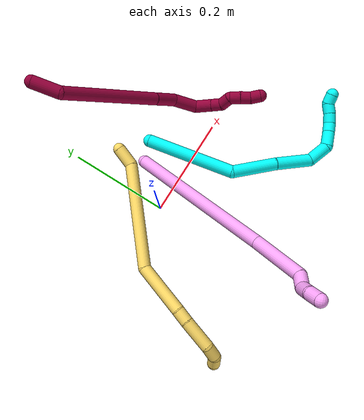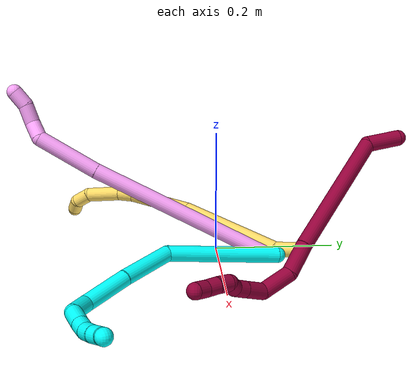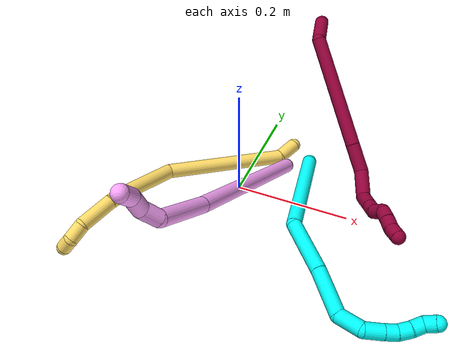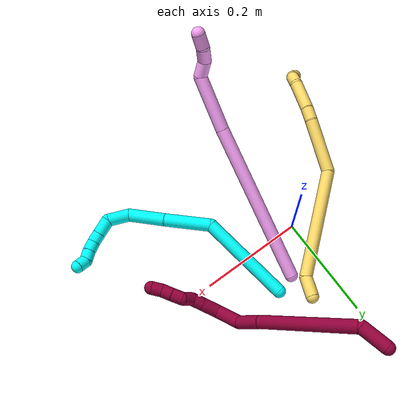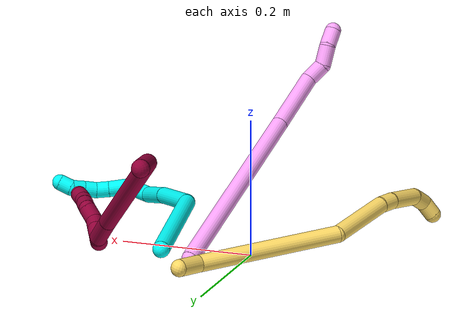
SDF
<sdf version="1.7">
 <world name="default">
  <model name="bin">
   <static>1</static>
   <link name="bottom">
    <collision name="collision-bottom">
     <pose>0 0 -0.01 0 -0 0</pose>
     <geometry><box><size>0.8 0.6 0.02</size></box></geometry>
     <surface>
      <friction><ode><mu>100</mu><mu2>100</mu2></ode></friction>
      <contact><collide_bitmask>65535</collide_bitmask></contact>
     </surface>
    </collision>
   </link>
   <link name="west_wall">
    <collision name="collision-west_wall">
     <pose>-0.41 0 0.1 0 -0 0</pose>
     <geometry><box><size>0.02 0.6 0.2</size></box></geometry>
     <surface>
      <friction><ode><mu>100</mu><mu2>100</mu2></ode></friction>
      <contact><collide_bitmask>65535</collide_bitmask></contact>
     </surface>
    </collision>
   </link>
   <link name="east_wall">
    <collision name="collision-east_wall">
     <pose>0.41 0 0.1 0 -0 0</pose>
     <geometry><box><size>0.02 0.6 0.2</size></box></geometry>
     <surface>
      <friction><ode><mu>100</mu><mu2>100</mu2></ode></friction>
      <contact><collide_bitmask>65535</collide_bitmask></contact>
     </surface>
    </collision>
   </link>
   <link name="south_wall">
    <collision name="collision-south_wall">
     <pose>0 -0.31 0.1 0 -0 0</pose>
     <geometry><box><size>0.8 0.02 0.2</size></box></geometry>
     <surface>
      <friction><ode><mu>100</mu><mu2>100</mu2></ode></friction>
      <contact><collide_bitmask>65535</collide_bitmask></contact>
     </surface>
    </collision>
   </link>
   <link name="north_wall">
    <collision name="collision-north_wall">
     <pose>0 0.31 0.1 0 -0 0</pose>
     <geometry><box><size>0.8 0.02 0.2</size></box></geometry>
     <surface>
      <friction><ode><mu>100</mu><mu2>100</mu2></ode></friction>
      <contact><collide_bitmask>65535</collide_bitmask></contact>
     </surface>
    </collision>
   </link>
  </model>
  <model name="3">
   <static>0</static>
   <link name="3">
    <collision name="collision-cylinder-e_1_1_4">
     <pose>-0.008405 -0.033027 0.082955 0.378891 -0.093858 -0.01801</pose>
     <geometry><cylinder><radius>0.0125</radius><length>0.179365</length></cylinder></geometry>
     <surface>
      <friction><ode><mu>1.16</mu><mu2>1.16</mu2><slip1>0</slip1><slip2>0</slip2></ode></friction>
      <contact><ode><kp>1e+06</kp><kd>1</kd><max_vel>0</max_vel><min_depth>0.001</min_depth></ode></contact>
     </surface>
    </collision>
    <visual name="visual-cylinder-e_1_1_4">
     <pose>-0.008405 -0.033027 0.082955 0.378891 -0.093858 -0.01801</pose>
     <geometry><cylinder><radius>0.0125</radius><length>0.179365</length></cylinder></geometry>
     <material><ambient>0.003922 1 0.996078 1</ambient></material>
    </visual>
    <collision name="collision-cylinder-e_2_4_5">
     <pose>-0.005443 -0.058285 0.209159 -0.177715 0.253142 -0.022673</pose>
     <geometry><cylinder><radius>0.0125</radius><length>0.090776</length></cylinder></geometry>
     <surface>
      <friction><ode><mu>1.16</mu><mu2>1.16</mu2><slip1>0</slip1><slip2>0</slip2></ode></friction>
      <contact><ode><kp>1e+06</kp><kd>1</kd><max_vel>0</max_vel><min_depth>0.001</min_depth></ode></contact>
     </surface>
    </collision>
    <visual name="visual-cylinder-e_2_4_5">
     <pose>-0.005443 -0.058285 0.209159 -0.177715 0.253142 -0.022673</pose>
     <geometry><cylinder><radius>0.0125</radius><length>0.090776</length></cylinder></geometry>
     <material><ambient>0.003922 1 0.996078 1</ambient></material>
    </visual>
    <collision name="collision-cylinder-e_3_5_6">
     <pose>0.018727 -0.046612 0.287706 -0.110202 0.346017 -0.019277</pose>
     <geometry><cylinder><radius>0.0125</radius><length>0.0755</length></cylinder></geometry>
     <surface>
      <friction><ode><mu>1.16</mu><mu2>1.16</mu2><slip1>0</slip1><slip2>0</slip2></ode></friction>
      <contact><ode><kp>1e+06</kp><kd>1</kd><max_vel>0</max_vel><min_depth>0.001</min_depth></ode></contact>
     </surface>
    </collision>
    <visual name="visual-cylinder-e_3_5_6">
     <pose>0.018727 -0.046612 0.287706 -0.110202 0.346017 -0.019277</pose>
     <geometry><cylinder><radius>0.0125</radius><length>0.0755</length></cylinder></geometry>
     <material><ambient>0.003922 1 0.996078 1</ambient></material>
    </visual>
    <collision name="collision-cylinder-e_4_6_7">
     <pose>0.032409 -0.029456 0.339735 -0.669791 0.041139 -0.014318</pose>
     <geometry><cylinder><radius>0.0125</radius><length>0.042723</length></cylinder></geometry>
     <surface>
      <friction><ode><mu>1.16</mu><mu2>1.16</mu2><slip1>0</slip1><slip2>0</slip2></ode></friction>
      <contact><ode><kp>1e+06</kp><kd>1</kd><max_vel>0</max_vel><min_depth>0.001</min_depth></ode></contact>
     </surface>
    </collision>
    <visual name="visual-cylinder-e_4_6_7">
     <pose>0.032409 -0.029456 0.339735 -0.669791 0.041139 -0.014318</pose>
     <geometry><cylinder><radius>0.0125</radius><length>0.042723</length></cylinder></geometry>
     <material><ambient>0.003922 1 0.996078 1</ambient></material>
    </visual>
    <collision name="collision-cylinder-e_5_7_8">
     <pose>0.038143 -0.001668 0.359189 -1.38569 0.317214 -0.264016</pose>
     <geometry><cylinder><radius>0.0125</radius><length>0.031132</length></cylinder></geometry>
     <surface>
      <friction><ode><mu>1.16</mu><mu2>1.16</mu2><slip1>0</slip1><slip2>0</slip2></ode></friction>
      <contact><ode><kp>1e+06</kp><kd>1</kd><max_vel>0</max_vel><min_depth>0.001</min_depth></ode></contact>
     </surface>
    </collision>
    <visual name="visual-cylinder-e_5_7_8">
     <pose>0.038143 -0.001668 0.359189 -1.38569 0.317214 -0.264016</pose>
     <geometry><cylinder><radius>0.0125</radius><length>0.031132</length></cylinder></geometry>
     <material><ambient>0.003922 1 0.996078 1</ambient></material>
    </visual>
    <collision name="collision-cylinder-e_6_8_9">
     <pose>0.045518 0.022497 0.363334 -1.42405 0.253309 -0.218918</pose>
     <geometry><cylinder><radius>0.0125</radius><length>0.020108</length></cylinder></geometry>
     <surface>
      <friction><ode><mu>1.16</mu><mu2>1.16</mu2><slip1>0</slip1><slip2>0</slip2></ode></friction>
      <contact><ode><kp>1e+06</kp><kd>1</kd><max_vel>0</max_vel><min_depth>0.001</min_depth></ode></contact>
     </surface>
    </collision>
    <visual name="visual-cylinder-e_6_8_9">
     <pose>0.045518 0.022497 0.363334 -1.42405 0.253309 -0.218918</pose>
     <geometry><cylinder><radius>0.0125</radius><length>0.020108</length></cylinder></geometry>
     <material><ambient>0.003922 1 0.996078 1</ambient></material>
    </visual>
    <collision name="collision-cylinder-e_7_9_10">
     <pose>0.048113 0.042248 0.364919 -1.55485 0.007499 -0.00738</pose>
     <geometry><cylinder><radius>0.0125</radius><length>0.020248</length></cylinder></geometry>
     <surface>
      <friction><ode><mu>1.16</mu><mu2>1.16</mu2><slip1>0</slip1><slip2>0</slip2></ode></friction>
      <contact><ode><kp>1e+06</kp><kd>1</kd><max_vel>0</max_vel><min_depth>0.001</min_depth></ode></contact>
     </surface>
    </collision>
    <visual name="visual-cylinder-e_7_9_10">
     <pose>0.048113 0.042248 0.364919 -1.55485 0.007499 -0.00738</pose>
     <geometry><cylinder><radius>0.0125</radius><length>0.020248</length></cylinder></geometry>
     <material><ambient>0.003922 1 0.996078 1</ambient></material>
    </visual>
    <collision name="collision-cylinder-e_8_10_11">
     <pose>0.048024 0.062316 0.363615 -1.71709 -0.016406 0.019</pose>
     <geometry><cylinder><radius>0.0125</radius><length>0.020108</length></cylinder></geometry>
     <surface>
      <friction><ode><mu>1.16</mu><mu2>1.16</mu2><slip1>0</slip1><slip2>0</slip2></ode></friction>
      <contact><ode><kp>1e+06</kp><kd>1</kd><max_vel>0</max_vel><min_depth>0.001</min_depth></ode></contact>
     </surface>
    </collision>
    <visual name="visual-cylinder-e_8_10_11">
     <pose>0.048024 0.062316 0.363615 -1.71709 -0.016406 0.019</pose>
     <geometry><cylinder><radius>0.0125</radius><length>0.020108</length></cylinder></geometry>
     <material><ambient>0.003922 1 0.996078 1</ambient></material>
    </visual>
    <collision name="collision-cylinder-e_9_11_2">
     <pose>0.045648 0.081193 0.366115 -1.15295 -0.222561 0.145041</pose>
     <geometry><cylinder><radius>0.0125</radius><length>0.020041</length></cylinder></geometry>
     <surface>
      <friction><ode><mu>1.16</mu><mu2>1.16</mu2><slip1>0</slip1><slip2>0</slip2></ode></friction>
      <contact><ode><kp>1e+06</kp><kd>1</kd><max_vel>0</max_vel><min_depth>0.001</min_depth></ode></contact>
     </surface>
    </collision>
    <visual name="visual-cylinder-e_9_11_2">
     <pose>0.045648 0.081193 0.366115 -1.15295 -0.222561 0.145041</pose>
     <geometry><cylinder><radius>0.0125</radius><length>0.020041</length></cylinder></geometry>
     <material><ambient>0.003922 1 0.996078 1</ambient></material>
    </visual>
    <collision name="collision-sphere-2">
     <pose>0.043436 0.090126 0.370081 0 -0 0</pose>
     <geometry><sphere><radius>0.0125</radius></sphere></geometry>
     <surface>
      <friction><ode><mu>1.16</mu><mu2>1.16</mu2><slip1>0</slip1><slip2>0</slip2></ode></friction>
      <contact><ode><kp>1e+06</kp><kd>1</kd><max_vel>0</max_vel><min_depth>0.001</min_depth></ode></contact>
     </surface>
    </collision>
    <visual name="visual-sphere-2">
     <pose>0.043436 0.090126 0.370081 0 -0 0</pose>
     <geometry><sphere><radius>0.0125</radius></sphere></geometry>
     <material><ambient>0.003922 1 0.996078 1</ambient></material>
    </visual>
    <collision name="collision-sphere-11">
     <pose>0.047859 0.072261 0.362149 0 -0 0</pose>
     <geometry><sphere><radius>0.0125</radius></sphere></geometry>
     <surface>
      <friction><ode><mu>1.16</mu><mu2>1.16</mu2><slip1>0</slip1><slip2>0</slip2></ode></friction>
      <contact><ode><kp>1e+06</kp><kd>1</kd><max_vel>0</max_vel><min_depth>0.001</min_depth></ode></contact>
     </surface>
    </collision>
    <visual name="visual-sphere-11">
     <pose>0.047859 0.072261 0.362149 0 -0 0</pose>
     <geometry><sphere><radius>0.0125</radius></sphere></geometry>
     <material><ambient>0.003922 1 0.996078 1</ambient></material>
    </visual>
    <collision name="collision-sphere-10">
     <pose>0.048189 0.052371 0.36508 0 -0 0</pose>
     <geometry><sphere><radius>0.0125</radius></sphere></geometry>
     <surface>
      <friction><ode><mu>1.16</mu><mu2>1.16</mu2><slip1>0</slip1><slip2>0</slip2></ode></friction>
      <contact><ode><kp>1e+06</kp><kd>1</kd><max_vel>0</max_vel><min_depth>0.001</min_depth></ode></contact>
     </surface>
    </collision>
    <visual name="visual-sphere-10">
     <pose>0.048189 0.052371 0.36508 0 -0 0</pose>
     <geometry><sphere><radius>0.0125</radius></sphere></geometry>
     <material><ambient>0.003922 1 0.996078 1</ambient></material>
    </visual>
    <collision name="collision-sphere-9">
     <pose>0.048037 0.032125 0.364757 0 -0 0</pose>
     <geometry><sphere><radius>0.0125</radius></sphere></geometry>
     <surface>
      <friction><ode><mu>1.16</mu><mu2>1.16</mu2><slip1>0</slip1><slip2>0</slip2></ode></friction>
      <contact><ode><kp>1e+06</kp><kd>1</kd><max_vel>0</max_vel><min_depth>0.001</min_depth></ode></contact>
     </surface>
    </collision>
    <visual name="visual-sphere-9">
     <pose>0.048037 0.032125 0.364757 0 -0 0</pose>
     <geometry><sphere><radius>0.0125</radius></sphere></geometry>
     <material><ambient>0.003922 1 0.996078 1</ambient></material>
    </visual>
    <collision name="collision-sphere-4">
     <pose>-0.01681 -0.066053 0.16591 0 -0 0</pose>
     <geometry><sphere><radius>0.0125</radius></sphere></geometry>
     <surface>
      <friction><ode><mu>1.16</mu><mu2>1.16</mu2><slip1>0</slip1><slip2>0</slip2></ode></friction>
      <contact><ode><kp>1e+06</kp><kd>1</kd><max_vel>0</max_vel><min_depth>0.001</min_depth></ode></contact>
     </surface>
    </collision>
    <visual name="visual-sphere-4">
     <pose>-0.01681 -0.066053 0.16591 0 -0 0</pose>
     <geometry><sphere><radius>0.0125</radius></sphere></geometry>
     <material><ambient>0.003922 1 0.996078 1</ambient></material>
    </visual>
    <collision name="collision-sphere-1">
     <geometry><sphere><radius>0.0125</radius></sphere></geometry>
     <surface>
      <friction><ode><mu>1.16</mu><mu2>1.16</mu2><slip1>0</slip1><slip2>0</slip2></ode></friction>
      <contact><ode><kp>1e+06</kp><kd>1</kd><max_vel>0</max_vel><min_depth>0.001</min_depth></ode></contact>
     </surface>
    </collision>
    <visual name="visual-sphere-1">
     <geometry><sphere><radius>0.0125</radius></sphere></geometry>
     <material><ambient>0.003922 1 0.996078 1</ambient></material>
    </visual>
    <collision name="collision-sphere-8">
     <pose>0.042998 0.012869 0.361911 0 -0 0</pose>
     <geometry><sphere><radius>0.0125</radius></sphere></geometry>
     <surface>
      <friction><ode><mu>1.16</mu><mu2>1.16</mu2><slip1>0</slip1><slip2>0</slip2></ode></friction>
      <contact><ode><kp>1e+06</kp><kd>1</kd><max_vel>0</max_vel><min_depth>0.001</min_depth></ode></contact>
     </surface>
    </collision>
    <visual name="visual-sphere-8">
     <pose>0.042998 0.012869 0.361911 0 -0 0</pose>
     <geometry><sphere><radius>0.0125</radius></sphere></geometry>
     <material><ambient>0.003922 1 0.996078 1</ambient></material>
    </visual>
    <collision name="collision-sphere-5">
     <pose>0.005924 -0.050517 0.252408 0 -0 0</pose>
     <geometry><sphere><radius>0.0125</radius></sphere></geometry>
     <surface>
      <friction><ode><mu>1.16</mu><mu2>1.16</mu2><slip1>0</slip1><slip2>0</slip2></ode></friction>
      <contact><ode><kp>1e+06</kp><kd>1</kd><max_vel>0</max_vel><min_depth>0.001</min_depth></ode></contact>
     </surface>
    </collision>
    <visual name="visual-sphere-5">
     <pose>0.005924 -0.050517 0.252408 0 -0 0</pose>
     <geometry><sphere><radius>0.0125</radius></sphere></geometry>
     <material><ambient>0.003922 1 0.996078 1</ambient></material>
    </visual>
    <collision name="collision-sphere-6">
     <pose>0.03153 -0.042706 0.323003 0 -0 0</pose>
     <geometry><sphere><radius>0.0125</radius></sphere></geometry>
     <surface>
      <friction><ode><mu>1.16</mu><mu2>1.16</mu2><slip1>0</slip1><slip2>0</slip2></ode></friction>
      <contact><ode><kp>1e+06</kp><kd>1</kd><max_vel>0</max_vel><min_depth>0.001</min_depth></ode></contact>
     </surface>
    </collision>
    <visual name="visual-sphere-6">
     <pose>0.03153 -0.042706 0.323003 0 -0 0</pose>
     <geometry><sphere><radius>0.0125</radius></sphere></geometry>
     <material><ambient>0.003922 1 0.996078 1</ambient></material>
    </visual>
    <collision name="collision-sphere-7">
     <pose>0.033287 -0.016205 0.356467 0 -0 0</pose>
     <geometry><sphere><radius>0.0125</radius></sphere></geometry>
     <surface>
      <friction><ode><mu>1.16</mu><mu2>1.16</mu2><slip1>0</slip1><slip2>0</slip2></ode></friction>
      <contact><ode><kp>1e+06</kp><kd>1</kd><max_vel>0</max_vel><min_depth>0.001</min_depth></ode></contact>
     </surface>
    </collision>
    <visual name="visual-sphere-7">
     <pose>0.033287 -0.016205 0.356467 0 -0 0</pose>
     <geometry><sphere><radius>0.0125</radius></sphere></geometry>
     <material><ambient>0.003922 1 0.996078 1</ambient></material>
    </visual>
    <inertial>
     <pose>0.011509 -0.023712 0.221256 0 -0 0</pose>
     <mass>0.5</mass>
     <inertia>
      <ixx>0.000595</ixx>
      <ixy>0</ixy>
      <ixz>0</ixz>
      <iyy>0.00056</iyy>
      <iyz>0</iyz>
      <izz>0.000194</izz>
     </inertia>
    </inertial>
   </link>
   <pose>0.102957 0.089627 0.024455 1.12674 1.38009 0.122555</pose>
  </model>
  <model name="4">
   <static>0</static>
   <link name="4">
    <collision name="collision-cylinder-e_1_1_4">
     <pose>-0.013681 -0.074809 0.133841 0.509679 -0.08899 -0.023197</pose>
     <geometry><cylinder><radius>0.0125</radius><length>0.307876</length></cylinder></geometry>
     <surface>
      <friction><ode><mu>1.16</mu><mu2>1.16</mu2><slip1>0</slip1><slip2>0</slip2></ode></friction>
      <contact><ode><kp>1e+06</kp><kd>1</kd><max_vel>0</max_vel><min_depth>0.001</min_depth></ode></contact>
     </surface>
    </collision>
    <visual name="visual-cylinder-e_1_1_4">
     <pose>-0.013681 -0.074809 0.133841 0.509679 -0.08899 -0.023197</pose>
     <geometry><cylinder><radius>0.0125</radius><length>0.307876</length></cylinder></geometry>
     <material><ambient>1 0.65098 0.996078 1</ambient></material>
    </visual>
    <collision name="collision-cylinder-e_2_4_5">
     <pose>-0.034555 -0.177008 0.311288 0.560847 -0.138789 -0.040032</pose>
     <geometry><cylinder><radius>0.0125</radius><length>0.103988</length></cylinder></geometry>
     <surface>
      <friction><ode><mu>1.16</mu><mu2>1.16</mu2><slip1>0</slip1><slip2>0</slip2></ode></friction>
      <contact><ode><kp>1e+06</kp><kd>1</kd><max_vel>0</max_vel><min_depth>0.001</min_depth></ode></contact>
     </surface>
    </collision>
    <visual name="visual-cylinder-e_2_4_5">
     <pose>-0.034555 -0.177008 0.311288 0.560847 -0.138789 -0.040032</pose>
     <geometry><cylinder><radius>0.0125</radius><length>0.103988</length></cylinder></geometry>
     <material><ambient>1 0.65098 0.996078 1</ambient></material>
    </visual>
    <collision name="collision-cylinder-e_3_5_6">
     <pose>-0.046474 -0.218095 0.359371 1.25483 -0.316919 -0.230733</pose>
     <geometry><cylinder><radius>0.0125</radius><length>0.030332</length></cylinder></geometry>
     <surface>
      <friction><ode><mu>1.16</mu><mu2>1.16</mu2><slip1>0</slip1><slip2>0</slip2></ode></friction>
      <contact><ode><kp>1e+06</kp><kd>1</kd><max_vel>0</max_vel><min_depth>0.001</min_depth></ode></contact>
     </surface>
    </collision>
    <visual name="visual-cylinder-e_3_5_6">
     <pose>-0.046474 -0.218095 0.359371 1.25483 -0.316919 -0.230733</pose>
     <geometry><cylinder><radius>0.0125</radius><length>0.030332</length></cylinder></geometry>
     <material><ambient>1 0.65098 0.996078 1</ambient></material>
    </visual>
    <collision name="collision-cylinder-e_4_6_7">
     <pose>-0.062109 -0.240329 0.370729 0.892491 -0.782851 -0.389904</pose>
     <geometry><cylinder><radius>0.0125</radius><length>0.030932</length></cylinder></geometry>
     <surface>
      <friction><ode><mu>1.16</mu><mu2>1.16</mu2><slip1>0</slip1><slip2>0</slip2></ode></friction>
      <contact><ode><kp>1e+06</kp><kd>1</kd><max_vel>0</max_vel><min_depth>0.001</min_depth></ode></contact>
     </surface>
    </collision>
    <visual name="visual-cylinder-e_4_6_7">
     <pose>-0.062109 -0.240329 0.370729 0.892491 -0.782851 -0.389904</pose>
     <geometry><cylinder><radius>0.0125</radius><length>0.030932</length></cylinder></geometry>
     <material><ambient>1 0.65098 0.996078 1</ambient></material>
    </visual>
    <collision name="collision-cylinder-e_5_7_2">
     <pose>-0.079396 -0.256109 0.386956 0.659196 -0.494692 -0.172332</pose>
     <geometry><cylinder><radius>0.0125</radius><length>0.026871</length></cylinder></geometry>
     <surface>
      <friction><ode><mu>1.16</mu><mu2>1.16</mu2><slip1>0</slip1><slip2>0</slip2></ode></friction>
      <contact><ode><kp>1e+06</kp><kd>1</kd><max_vel>0</max_vel><min_depth>0.001</min_depth></ode></contact>
     </surface>
    </collision>
    <visual name="visual-cylinder-e_5_7_2">
     <pose>-0.079396 -0.256109 0.386956 0.659196 -0.494692 -0.172332</pose>
     <geometry><cylinder><radius>0.0125</radius><length>0.026871</length></cylinder></geometry>
     <material><ambient>1 0.65098 0.996078 1</ambient></material>
    </visual>
    <collision name="collision-sphere-2">
     <pose>-0.085775 -0.263351 0.396303 0 -0 0</pose>
     <geometry><sphere><radius>0.0125</radius></sphere></geometry>
     <surface>
      <friction><ode><mu>1.16</mu><mu2>1.16</mu2><slip1>0</slip1><slip2>0</slip2></ode></friction>
      <contact><ode><kp>1e+06</kp><kd>1</kd><max_vel>0</max_vel><min_depth>0.001</min_depth></ode></contact>
     </surface>
    </collision>
    <visual name="visual-sphere-2">
     <pose>-0.085775 -0.263351 0.396303 0 -0 0</pose>
     <geometry><sphere><radius>0.0125</radius></sphere></geometry>
     <material><ambient>1 0.65098 0.996078 1</ambient></material>
    </visual>
    <collision name="collision-sphere-7">
     <pose>-0.073017 -0.248866 0.377608 0 -0 0</pose>
     <geometry><sphere><radius>0.0125</radius></sphere></geometry>
     <surface>
      <friction><ode><mu>1.16</mu><mu2>1.16</mu2><slip1>0</slip1><slip2>0</slip2></ode></friction>
      <contact><ode><kp>1e+06</kp><kd>1</kd><max_vel>0</max_vel><min_depth>0.001</min_depth></ode></contact>
     </surface>
    </collision>
    <visual name="visual-sphere-7">
     <pose>-0.073017 -0.248866 0.377608 0 -0 0</pose>
     <geometry><sphere><radius>0.0125</radius></sphere></geometry>
     <material><ambient>1 0.65098 0.996078 1</ambient></material>
    </visual>
    <collision name="collision-sphere-6">
     <pose>-0.051201 -0.231792 0.363849 0 -0 0</pose>
     <geometry><sphere><radius>0.0125</radius></sphere></geometry>
     <surface>
      <friction><ode><mu>1.16</mu><mu2>1.16</mu2><slip1>0</slip1><slip2>0</slip2></ode></friction>
      <contact><ode><kp>1e+06</kp><kd>1</kd><max_vel>0</max_vel><min_depth>0.001</min_depth></ode></contact>
     </surface>
    </collision>
    <visual name="visual-sphere-6">
     <pose>-0.051201 -0.231792 0.363849 0 -0 0</pose>
     <geometry><sphere><radius>0.0125</radius></sphere></geometry>
     <material><ambient>1 0.65098 0.996078 1</ambient></material>
    </visual>
    <collision name="collision-sphere-5">
     <pose>-0.041748 -0.204398 0.354893 0 -0 0</pose>
     <geometry><sphere><radius>0.0125</radius></sphere></geometry>
     <surface>
      <friction><ode><mu>1.16</mu><mu2>1.16</mu2><slip1>0</slip1><slip2>0</slip2></ode></friction>
      <contact><ode><kp>1e+06</kp><kd>1</kd><max_vel>0</max_vel><min_depth>0.001</min_depth></ode></contact>
     </surface>
    </collision>
    <visual name="visual-sphere-5">
     <pose>-0.041748 -0.204398 0.354893 0 -0 0</pose>
     <geometry><sphere><radius>0.0125</radius></sphere></geometry>
     <material><ambient>1 0.65098 0.996078 1</ambient></material>
    </visual>
    <collision name="collision-sphere-1">
     <geometry><sphere><radius>0.0125</radius></sphere></geometry>
     <surface>
      <friction><ode><mu>1.16</mu><mu2>1.16</mu2><slip1>0</slip1><slip2>0</slip2></ode></friction>
      <contact><ode><kp>1e+06</kp><kd>1</kd><max_vel>0</max_vel><min_depth>0.001</min_depth></ode></contact>
     </surface>
    </collision>
    <visual name="visual-sphere-1">
     <geometry><sphere><radius>0.0125</radius></sphere></geometry>
     <material><ambient>1 0.65098 0.996078 1</ambient></material>
    </visual>
    <collision name="collision-sphere-4">
     <pose>-0.027362 -0.149618 0.267682 0 -0 0</pose>
     <geometry><sphere><radius>0.0125</radius></sphere></geometry>
     <surface>
      <friction><ode><mu>1.16</mu><mu2>1.16</mu2><slip1>0</slip1><slip2>0</slip2></ode></friction>
      <contact><ode><kp>1e+06</kp><kd>1</kd><max_vel>0</max_vel><min_depth>0.001</min_depth></ode></contact>
     </surface>
    </collision>
    <visual name="visual-sphere-4">
     <pose>-0.027362 -0.149618 0.267682 0 -0 0</pose>
     <geometry><sphere><radius>0.0125</radius></sphere></geometry>
     <material><ambient>1 0.65098 0.996078 1</ambient></material>
    </visual>
    <inertial>
     <pose>-0.026539 -0.124739 0.212685 0 -0 0</pose>
     <mass>0.5</mass>
     <inertia>
      <ixx>0.002469</ixx>
      <ixy>0</ixy>
      <ixz>0</ixz>
      <iyy>0.002142</iyy>
      <iyz>0</iyz>
      <izz>0.001512</izz>
     </inertia>
    </inertial>
   </link>
   <pose>0.063412 0.077308 0.011495 -1.07364 1.12691 -2.34518</pose>
  </model>
  <model name="5">
   <static>0</static>
   <link name="5">
    <collision name="collision-cylinder-e_1_1_4">
     <pose>-0.011448 -0.01633 0.00375 1.34509 -0.599393 -0.482593</pose>
     <geometry><cylinder><radius>0.0125</radius><length>0.040585</length></cylinder></geometry>
     <surface>
      <friction><ode><mu>1.16</mu><mu2>1.16</mu2><slip1>0</slip1><slip2>0</slip2></ode></friction>
      <contact><ode><kp>1e+06</kp><kd>1</kd><max_vel>0</max_vel><min_depth>0.001</min_depth></ode></contact>
     </surface>
    </collision>
    <visual name="visual-cylinder-e_1_1_4">
     <pose>-0.011448 -0.01633 0.00375 1.34509 -0.599393 -0.482593</pose>
     <geometry><cylinder><radius>0.0125</radius><length>0.040585</length></cylinder></geometry>
     <material><ambient>1 0.858824 0.4 1</ambient></material>
    </visual>
    <collision name="collision-cylinder-e_2_4_5">
     <pose>-0.10929 -0.076002 0.05295 0.761659 -0.942216 -0.402353</pose>
     <geometry><cylinder><radius>0.0125</radius><length>0.213618</length></cylinder></geometry>
     <surface>
      <friction><ode><mu>1.16</mu><mu2>1.16</mu2><slip1>0</slip1><slip2>0</slip2></ode></friction>
      <contact><ode><kp>1e+06</kp><kd>1</kd><max_vel>0</max_vel><min_depth>0.001</min_depth></ode></contact>
     </surface>
    </collision>
    <visual name="visual-cylinder-e_2_4_5">
     <pose>-0.10929 -0.076002 0.05295 0.761659 -0.942216 -0.402353</pose>
     <geometry><cylinder><radius>0.0125</radius><length>0.213618</length></cylinder></geometry>
     <material><ambient>1 0.858824 0.4 1</ambient></material>
    </visual>
    <collision name="collision-cylinder-e_3_5_6">
     <pose>-0.21917 -0.161317 0.121125 1.07457 -0.457278 -0.275513</pose>
     <geometry><cylinder><radius>0.0125</radius><length>0.10639</length></cylinder></geometry>
     <surface>
      <friction><ode><mu>1.16</mu><mu2>1.16</mu2><slip1>0</slip1><slip2>0</slip2></ode></friction>
      <contact><ode><kp>1e+06</kp><kd>1</kd><max_vel>0</max_vel><min_depth>0.001</min_depth></ode></contact>
     </surface>
    </collision>
    <visual name="visual-cylinder-e_3_5_6">
     <pose>-0.21917 -0.161317 0.121125 1.07457 -0.457278 -0.275513</pose>
     <geometry><cylinder><radius>0.0125</radius><length>0.10639</length></cylinder></geometry>
     <material><ambient>1 0.858824 0.4 1</ambient></material>
    </visual>
    <collision name="collision-cylinder-e_4_6_7">
     <pose>-0.249646 -0.213996 0.147488 1.24314 -0.553668 -0.401549</pose>
     <geometry><cylinder><radius>0.0125</radius><length>0.026588</length></cylinder></geometry>
     <surface>
      <friction><ode><mu>1.16</mu><mu2>1.16</mu2><slip1>0</slip1><slip2>0</slip2></ode></friction>
      <contact><ode><kp>1e+06</kp><kd>1</kd><max_vel>0</max_vel><min_depth>0.001</min_depth></ode></contact>
     </surface>
    </collision>
    <visual name="visual-cylinder-e_4_6_7">
     <pose>-0.249646 -0.213996 0.147488 1.24314 -0.553668 -0.401549</pose>
     <geometry><cylinder><radius>0.0125</radius><length>0.026588</length></cylinder></geometry>
     <material><ambient>1 0.858824 0.4 1</ambient></material>
    </visual>
    <collision name="collision-cylinder-e_5_7_8">
     <pose>-0.272879 -0.24992 0.155435 1.40161 -0.5657 -0.48092</pose>
     <geometry><cylinder><radius>0.0125</radius><length>0.060608</length></cylinder></geometry>
     <surface>
      <friction><ode><mu>1.16</mu><mu2>1.16</mu2><slip1>0</slip1><slip2>0</slip2></ode></friction>
      <contact><ode><kp>1e+06</kp><kd>1</kd><max_vel>0</max_vel><min_depth>0.001</min_depth></ode></contact>
     </surface>
    </collision>
    <visual name="visual-cylinder-e_5_7_8">
     <pose>-0.272879 -0.24992 0.155435 1.40161 -0.5657 -0.48092</pose>
     <geometry><cylinder><radius>0.0125</radius><length>0.060608</length></cylinder></geometry>
     <material><ambient>1 0.858824 0.4 1</ambient></material>
    </visual>
    <collision name="collision-cylinder-e_6_8_9">
     <pose>-0.298488 -0.285482 0.155928 1.92417 -0.704182 -0.970209</pose>
     <geometry><cylinder><radius>0.0125</radius><length>0.028932</length></cylinder></geometry>
     <surface>
      <friction><ode><mu>1.16</mu><mu2>1.16</mu2><slip1>0</slip1><slip2>0</slip2></ode></friction>
      <contact><ode><kp>1e+06</kp><kd>1</kd><max_vel>0</max_vel><min_depth>0.001</min_depth></ode></contact>
     </surface>
    </collision>
    <visual name="visual-cylinder-e_6_8_9">
     <pose>-0.298488 -0.285482 0.155928 1.92417 -0.704182 -0.970209</pose>
     <geometry><cylinder><radius>0.0125</radius><length>0.028932</length></cylinder></geometry>
     <material><ambient>1 0.858824 0.4 1</ambient></material>
    </visual>
    <collision name="collision-cylinder-e_7_9_2">
     <pose>-0.317374 -0.297963 0.145767 2.81669 -0.95785 -2.53011</pose>
     <geometry><cylinder><radius>0.0125</radius><length>0.023279</length></cylinder></geometry>
     <surface>
      <friction><ode><mu>1.16</mu><mu2>1.16</mu2><slip1>0</slip1><slip2>0</slip2></ode></friction>
      <contact><ode><kp>1e+06</kp><kd>1</kd><max_vel>0</max_vel><min_depth>0.001</min_depth></ode></contact>
     </surface>
    </collision>
    <visual name="visual-cylinder-e_7_9_2">
     <pose>-0.317374 -0.297963 0.145767 2.81669 -0.95785 -2.53011</pose>
     <geometry><cylinder><radius>0.0125</radius><length>0.023279</length></cylinder></geometry>
     <material><ambient>1 0.858824 0.4 1</ambient></material>
    </visual>
    <collision name="collision-sphere-2">
     <pose>-0.326894 -0.3001 0.139421 0 -0 0</pose>
     <geometry><sphere><radius>0.0125</radius></sphere></geometry>
     <surface>
      <friction><ode><mu>1.16</mu><mu2>1.16</mu2><slip1>0</slip1><slip2>0</slip2></ode></friction>
      <contact><ode><kp>1e+06</kp><kd>1</kd><max_vel>0</max_vel><min_depth>0.001</min_depth></ode></contact>
     </surface>
    </collision>
    <visual name="visual-sphere-2">
     <pose>-0.326894 -0.3001 0.139421 0 -0 0</pose>
     <geometry><sphere><radius>0.0125</radius></sphere></geometry>
     <material><ambient>1 0.858824 0.4 1</ambient></material>
    </visual>
    <collision name="collision-sphere-9">
     <pose>-0.307853 -0.295826 0.152112 0 -0 0</pose>
     <geometry><sphere><radius>0.0125</radius></sphere></geometry>
     <surface>
      <friction><ode><mu>1.16</mu><mu2>1.16</mu2><slip1>0</slip1><slip2>0</slip2></ode></friction>
      <contact><ode><kp>1e+06</kp><kd>1</kd><max_vel>0</max_vel><min_depth>0.001</min_depth></ode></contact>
     </surface>
    </collision>
    <visual name="visual-sphere-9">
     <pose>-0.307853 -0.295826 0.152112 0 -0 0</pose>
     <geometry><sphere><radius>0.0125</radius></sphere></geometry>
     <material><ambient>1 0.858824 0.4 1</ambient></material>
    </visual>
    <collision name="collision-sphere-4">
     <pose>-0.022896 -0.03266 0.0075 0 -0 0</pose>
     <geometry><sphere><radius>0.0125</radius></sphere></geometry>
     <surface>
      <friction><ode><mu>1.16</mu><mu2>1.16</mu2><slip1>0</slip1><slip2>0</slip2></ode></friction>
      <contact><ode><kp>1e+06</kp><kd>1</kd><max_vel>0</max_vel><min_depth>0.001</min_depth></ode></contact>
     </surface>
    </collision>
    <visual name="visual-sphere-4">
     <pose>-0.022896 -0.03266 0.0075 0 -0 0</pose>
     <geometry><sphere><radius>0.0125</radius></sphere></geometry>
     <material><ambient>1 0.858824 0.4 1</ambient></material>
    </visual>
    <collision name="collision-sphere-1">
     <geometry><sphere><radius>0.0125</radius></sphere></geometry>
     <surface>
      <friction><ode><mu>1.16</mu><mu2>1.16</mu2><slip1>0</slip1><slip2>0</slip2></ode></friction>
      <contact><ode><kp>1e+06</kp><kd>1</kd><max_vel>0</max_vel><min_depth>0.001</min_depth></ode></contact>
     </surface>
    </collision>
    <visual name="visual-sphere-1">
     <geometry><sphere><radius>0.0125</radius></sphere></geometry>
     <material><ambient>1 0.858824 0.4 1</ambient></material>
    </visual>
    <collision name="collision-sphere-8">
     <pose>-0.289122 -0.275138 0.159743 0 -0 0</pose>
     <geometry><sphere><radius>0.0125</radius></sphere></geometry>
     <surface>
      <friction><ode><mu>1.16</mu><mu2>1.16</mu2><slip1>0</slip1><slip2>0</slip2></ode></friction>
      <contact><ode><kp>1e+06</kp><kd>1</kd><max_vel>0</max_vel><min_depth>0.001</min_depth></ode></contact>
     </surface>
    </collision>
    <visual name="visual-sphere-8">
     <pose>-0.289122 -0.275138 0.159743 0 -0 0</pose>
     <geometry><sphere><radius>0.0125</radius></sphere></geometry>
     <material><ambient>1 0.858824 0.4 1</ambient></material>
    </visual>
    <collision name="collision-sphere-5">
     <pose>-0.195684 -0.119345 0.0984 0 -0 0</pose>
     <geometry><sphere><radius>0.0125</radius></sphere></geometry>
     <surface>
      <friction><ode><mu>1.16</mu><mu2>1.16</mu2><slip1>0</slip1><slip2>0</slip2></ode></friction>
      <contact><ode><kp>1e+06</kp><kd>1</kd><max_vel>0</max_vel><min_depth>0.001</min_depth></ode></contact>
     </surface>
    </collision>
    <visual name="visual-sphere-5">
     <pose>-0.195684 -0.119345 0.0984 0 -0 0</pose>
     <geometry><sphere><radius>0.0125</radius></sphere></geometry>
     <material><ambient>1 0.858824 0.4 1</ambient></material>
    </visual>
    <collision name="collision-sphere-6">
     <pose>-0.242656 -0.20329 0.143849 0 -0 0</pose>
     <geometry><sphere><radius>0.0125</radius></sphere></geometry>
     <surface>
      <friction><ode><mu>1.16</mu><mu2>1.16</mu2><slip1>0</slip1><slip2>0</slip2></ode></friction>
      <contact><ode><kp>1e+06</kp><kd>1</kd><max_vel>0</max_vel><min_depth>0.001</min_depth></ode></contact>
     </surface>
    </collision>
    <visual name="visual-sphere-6">
     <pose>-0.242656 -0.20329 0.143849 0 -0 0</pose>
     <geometry><sphere><radius>0.0125</radius></sphere></geometry>
     <material><ambient>1 0.858824 0.4 1</ambient></material>
    </visual>
    <collision name="collision-sphere-7">
     <pose>-0.256636 -0.224702 0.151128 0 -0 0</pose>
     <geometry><sphere><radius>0.0125</radius></sphere></geometry>
     <surface>
      <friction><ode><mu>1.16</mu><mu2>1.16</mu2><slip1>0</slip1><slip2>0</slip2></ode></friction>
      <contact><ode><kp>1e+06</kp><kd>1</kd><max_vel>0</max_vel><min_depth>0.001</min_depth></ode></contact>
     </surface>
    </collision>
    <visual name="visual-sphere-7">
     <pose>-0.256636 -0.224702 0.151128 0 -0 0</pose>
     <geometry><sphere><radius>0.0125</radius></sphere></geometry>
     <material><ambient>1 0.858824 0.4 1</ambient></material>
    </visual>
    <inertial>
     <pose>-0.172657 -0.140187 0.091193 0 -0 0</pose>
     <mass>0.5</mass>
     <inertia>
      <ixx>0.000303</ixx>
      <ixy>0</ixy>
      <ixz>0</ixz>
      <iyy>0.000548</iyy>
      <iyz>0</iyz>
      <izz>0.001184</izz>
     </inertia>
    </inertial>
   </link>
   <pose>0.057233 0.134141 0.01476 0.090188 -0.336143 0.246655</pose>
  </model>
  <model name="8">
   <static>0</static>
   <link name="8">
    <collision name="collision-cylinder-e_1_1_4">
     <pose>0.004708 -0.009942 -0.024561 2.75696 0.175827 0.850109</pose>
     <geometry><cylinder><radius>0.0125</radius><length>0.053825</length></cylinder></geometry>
     <surface>
      <friction><ode><mu>1.16</mu><mu2>1.16</mu2><slip1>0</slip1><slip2>0</slip2></ode></friction>
      <contact><ode><kp>1e+06</kp><kd>1</kd><max_vel>0</max_vel><min_depth>0.001</min_depth></ode></contact>
     </surface>
    </collision>
    <visual name="visual-cylinder-e_1_1_4">
     <pose>0.004708 -0.009942 -0.024561 2.75696 0.175827 0.850109</pose>
     <geometry><cylinder><radius>0.0125</radius><length>0.053825</length></cylinder></geometry>
     <material><ambient>0.584314 0 0.227451 1</ambient></material>
    </visual>
    <collision name="collision-cylinder-e_2_4_5">
     <pose>0.08294 -0.072813 -0.097919 2.3156 0.795952 1.52936</pose>
     <geometry><cylinder><radius>0.0125</radius><length>0.205799</length></cylinder></geometry>
     <surface>
      <friction><ode><mu>1.16</mu><mu2>1.16</mu2><slip1>0</slip1><slip2>0</slip2></ode></friction>
      <contact><ode><kp>1e+06</kp><kd>1</kd><max_vel>0</max_vel><min_depth>0.001</min_depth></ode></contact>
     </surface>
    </collision>
    <visual name="visual-cylinder-e_2_4_5">
     <pose>0.08294 -0.072813 -0.097919 2.3156 0.795952 1.52936</pose>
     <geometry><cylinder><radius>0.0125</radius><length>0.205799</length></cylinder></geometry>
     <material><ambient>0.584314 0 0.227451 1</ambient></material>
    </visual>
    <collision name="collision-cylinder-e_3_5_6">
     <pose>0.175806 -0.137935 -0.157126 2.27748 0.878615 1.58975</pose>
     <geometry><cylinder><radius>0.0125</radius><length>0.050246</length></cylinder></geometry>
     <surface>
      <friction><ode><mu>1.16</mu><mu2>1.16</mu2><slip1>0</slip1><slip2>0</slip2></ode></friction>
      <contact><ode><kp>1e+06</kp><kd>1</kd><max_vel>0</max_vel><min_depth>0.001</min_depth></ode></contact>
     </surface>
    </collision>
    <visual name="visual-cylinder-e_3_5_6">
     <pose>0.175806 -0.137935 -0.157126 2.27748 0.878615 1.58975</pose>
     <geometry><cylinder><radius>0.0125</radius><length>0.050246</length></cylinder></geometry>
     <material><ambient>0.584314 0 0.227451 1</ambient></material>
    </visual>
    <collision name="collision-cylinder-e_4_6_7">
     <pose>0.207045 -0.160646 -0.186782 2.64148 0.497071 1.56445</pose>
     <geometry><cylinder><radius>0.0125</radius><length>0.049901</length></cylinder></geometry>
     <surface>
      <friction><ode><mu>1.16</mu><mu2>1.16</mu2><slip1>0</slip1><slip2>0</slip2></ode></friction>
      <contact><ode><kp>1e+06</kp><kd>1</kd><max_vel>0</max_vel><min_depth>0.001</min_depth></ode></contact>
     </surface>
    </collision>
    <visual name="visual-cylinder-e_4_6_7">
     <pose>0.207045 -0.160646 -0.186782 2.64148 0.497071 1.56445</pose>
     <geometry><cylinder><radius>0.0125</radius><length>0.049901</length></cylinder></geometry>
     <material><ambient>0.584314 0 0.227451 1</ambient></material>
    </visual>
    <collision name="collision-cylinder-e_5_7_8">
     <pose>0.215149 -0.183263 -0.218266 2.36186 -0.216933 -0.518116</pose>
     <geometry><cylinder><radius>0.0125</radius><length>0.03525</length></cylinder></geometry>
     <surface>
      <friction><ode><mu>1.16</mu><mu2>1.16</mu2><slip1>0</slip1><slip2>0</slip2></ode></friction>
      <contact><ode><kp>1e+06</kp><kd>1</kd><max_vel>0</max_vel><min_depth>0.001</min_depth></ode></contact>
     </surface>
    </collision>
    <visual name="visual-cylinder-e_5_7_8">
     <pose>0.215149 -0.183263 -0.218266 2.36186 -0.216933 -0.518116</pose>
     <geometry><cylinder><radius>0.0125</radius><length>0.03525</length></cylinder></geometry>
     <material><ambient>0.584314 0 0.227451 1</ambient></material>
    </visual>
    <collision name="collision-cylinder-e_6_8_9">
     <pose>0.20906 -0.202319 -0.237566 2.36375 -0.227619 -0.544027</pose>
     <geometry><cylinder><radius>0.0125</radius><length>0.020346</length></cylinder></geometry>
     <surface>
      <friction><ode><mu>1.16</mu><mu2>1.16</mu2><slip1>0</slip1><slip2>0</slip2></ode></friction>
      <contact><ode><kp>1e+06</kp><kd>1</kd><max_vel>0</max_vel><min_depth>0.001</min_depth></ode></contact>
     </surface>
    </collision>
    <visual name="visual-cylinder-e_6_8_9">
     <pose>0.20906 -0.202319 -0.237566 2.36375 -0.227619 -0.544027</pose>
     <geometry><cylinder><radius>0.0125</radius><length>0.020346</length></cylinder></geometry>
     <material><ambient>0.584314 0 0.227451 1</ambient></material>
    </visual>
    <collision name="collision-cylinder-e_7_9_10">
     <pose>0.201105 -0.21879 -0.247302 1.84491 -0.520015 -0.675401</pose>
     <geometry><cylinder><radius>0.0125</radius><length>0.022782</length></cylinder></geometry>
     <surface>
      <friction><ode><mu>1.16</mu><mu2>1.16</mu2><slip1>0</slip1><slip2>0</slip2></ode></friction>
      <contact><ode><kp>1e+06</kp><kd>1</kd><max_vel>0</max_vel><min_depth>0.001</min_depth></ode></contact>
     </surface>
    </collision>
    <visual name="visual-cylinder-e_7_9_10">
     <pose>0.201105 -0.21879 -0.247302 1.84491 -0.520015 -0.675401</pose>
     <geometry><cylinder><radius>0.0125</radius><length>0.022782</length></cylinder></geometry>
     <material><ambient>0.584314 0 0.227451 1</ambient></material>
    </visual>
    <collision name="collision-cylinder-e_8_10_11">
     <pose>0.195796 -0.235696 -0.257465 2.36269 0.033422 0.081396</pose>
     <geometry><cylinder><radius>0.0125</radius><length>0.021051</length></cylinder></geometry>
     <surface>
      <friction><ode><mu>1.16</mu><mu2>1.16</mu2><slip1>0</slip1><slip2>0</slip2></ode></friction>
      <contact><ode><kp>1e+06</kp><kd>1</kd><max_vel>0</max_vel><min_depth>0.001</min_depth></ode></contact>
     </surface>
    </collision>
    <visual name="visual-cylinder-e_8_10_11">
     <pose>0.195796 -0.235696 -0.257465 2.36269 0.033422 0.081396</pose>
     <geometry><cylinder><radius>0.0125</radius><length>0.021051</length></cylinder></geometry>
     <material><ambient>0.584314 0 0.227451 1</ambient></material>
    </visual>
    <collision name="collision-cylinder-e_9_11_12">
     <pose>0.197418 -0.249715 -0.272448 2.41751 0.12622 0.330665</pose>
     <geometry><cylinder><radius>0.0125</radius><length>0.020176</length></cylinder></geometry>
     <surface>
      <friction><ode><mu>1.16</mu><mu2>1.16</mu2><slip1>0</slip1><slip2>0</slip2></ode></friction>
      <contact><ode><kp>1e+06</kp><kd>1</kd><max_vel>0</max_vel><min_depth>0.001</min_depth></ode></contact>
     </surface>
    </collision>
    <visual name="visual-cylinder-e_9_11_12">
     <pose>0.197418 -0.249715 -0.272448 2.41751 0.12622 0.330665</pose>
     <geometry><cylinder><radius>0.0125</radius><length>0.020176</length></cylinder></geometry>
     <material><ambient>0.584314 0 0.227451 1</ambient></material>
    </visual>
    <collision name="collision-cylinder-e_10_12_2">
     <pose>0.198674 -0.264597 -0.28613 2.21401 -0.001361 -0.00272</pose>
     <geometry><cylinder><radius>0.0125</radius><length>0.020626</length></cylinder></geometry>
     <surface>
      <friction><ode><mu>1.16</mu><mu2>1.16</mu2><slip1>0</slip1><slip2>0</slip2></ode></friction>
      <contact><ode><kp>1e+06</kp><kd>1</kd><max_vel>0</max_vel><min_depth>0.001</min_depth></ode></contact>
     </surface>
    </collision>
    <visual name="visual-cylinder-e_10_12_2">
     <pose>0.198674 -0.264597 -0.28613 2.21401 -0.001361 -0.00272</pose>
     <geometry><cylinder><radius>0.0125</radius><length>0.020626</length></cylinder></geometry>
     <material><ambient>0.584314 0 0.227451 1</ambient></material>
    </visual>
    <collision name="collision-sphere-2">
     <pose>0.19866 -0.272849 -0.292315 0 -0 0</pose>
     <geometry><sphere><radius>0.0125</radius></sphere></geometry>
     <surface>
      <friction><ode><mu>1.16</mu><mu2>1.16</mu2><slip1>0</slip1><slip2>0</slip2></ode></friction>
      <contact><ode><kp>1e+06</kp><kd>1</kd><max_vel>0</max_vel><min_depth>0.001</min_depth></ode></contact>
     </surface>
    </collision>
    <visual name="visual-sphere-2">
     <pose>0.19866 -0.272849 -0.292315 0 -0 0</pose>
     <geometry><sphere><radius>0.0125</radius></sphere></geometry>
     <material><ambient>0.584314 0 0.227451 1</ambient></material>
    </visual>
    <collision name="collision-sphere-12">
     <pose>0.198688 -0.256345 -0.279945 0 -0 0</pose>
     <geometry><sphere><radius>0.0125</radius></sphere></geometry>
     <surface>
      <friction><ode><mu>1.16</mu><mu2>1.16</mu2><slip1>0</slip1><slip2>0</slip2></ode></friction>
      <contact><ode><kp>1e+06</kp><kd>1</kd><max_vel>0</max_vel><min_depth>0.001</min_depth></ode></contact>
     </surface>
    </collision>
    <visual name="visual-sphere-12">
     <pose>0.198688 -0.256345 -0.279945 0 -0 0</pose>
     <geometry><sphere><radius>0.0125</radius></sphere></geometry>
     <material><ambient>0.584314 0 0.227451 1</ambient></material>
    </visual>
    <collision name="collision-sphere-11">
     <pose>0.196148 -0.243086 -0.264951 0 -0 0</pose>
     <geometry><sphere><radius>0.0125</radius></sphere></geometry>
     <surface>
      <friction><ode><mu>1.16</mu><mu2>1.16</mu2><slip1>0</slip1><slip2>0</slip2></ode></friction>
      <contact><ode><kp>1e+06</kp><kd>1</kd><max_vel>0</max_vel><min_depth>0.001</min_depth></ode></contact>
     </surface>
    </collision>
    <visual name="visual-sphere-11">
     <pose>0.196148 -0.243086 -0.264951 0 -0 0</pose>
     <geometry><sphere><radius>0.0125</radius></sphere></geometry>
     <material><ambient>0.584314 0 0.227451 1</ambient></material>
    </visual>
    <collision name="collision-sphere-10">
     <pose>0.195445 -0.228306 -0.249978 0 -0 0</pose>
     <geometry><sphere><radius>0.0125</radius></sphere></geometry>
     <surface>
      <friction><ode><mu>1.16</mu><mu2>1.16</mu2><slip1>0</slip1><slip2>0</slip2></ode></friction>
      <contact><ode><kp>1e+06</kp><kd>1</kd><max_vel>0</max_vel><min_depth>0.001</min_depth></ode></contact>
     </surface>
    </collision>
    <visual name="visual-sphere-10">
     <pose>0.195445 -0.228306 -0.249978 0 -0 0</pose>
     <geometry><sphere><radius>0.0125</radius></sphere></geometry>
     <material><ambient>0.584314 0 0.227451 1</ambient></material>
    </visual>
    <collision name="collision-sphere-9">
     <pose>0.206765 -0.209274 -0.244626 0 -0 0</pose>
     <geometry><sphere><radius>0.0125</radius></sphere></geometry>
     <surface>
      <friction><ode><mu>1.16</mu><mu2>1.16</mu2><slip1>0</slip1><slip2>0</slip2></ode></friction>
      <contact><ode><kp>1e+06</kp><kd>1</kd><max_vel>0</max_vel><min_depth>0.001</min_depth></ode></contact>
     </surface>
    </collision>
    <visual name="visual-sphere-9">
     <pose>0.206765 -0.209274 -0.244626 0 -0 0</pose>
     <geometry><sphere><radius>0.0125</radius></sphere></geometry>
     <material><ambient>0.584314 0 0.227451 1</ambient></material>
    </visual>
    <collision name="collision-sphere-4">
     <pose>0.009415 -0.019885 -0.049123 0 -0 0</pose>
     <geometry><sphere><radius>0.0125</radius></sphere></geometry>
     <surface>
      <friction><ode><mu>1.16</mu><mu2>1.16</mu2><slip1>0</slip1><slip2>0</slip2></ode></friction>
      <contact><ode><kp>1e+06</kp><kd>1</kd><max_vel>0</max_vel><min_depth>0.001</min_depth></ode></contact>
     </surface>
    </collision>
    <visual name="visual-sphere-4">
     <pose>0.009415 -0.019885 -0.049123 0 -0 0</pose>
     <geometry><sphere><radius>0.0125</radius></sphere></geometry>
     <material><ambient>0.584314 0 0.227451 1</ambient></material>
    </visual>
    <collision name="collision-sphere-1">
     <geometry><sphere><radius>0.0125</radius></sphere></geometry>
     <surface>
      <friction><ode><mu>1.16</mu><mu2>1.16</mu2><slip1>0</slip1><slip2>0</slip2></ode></friction>
      <contact><ode><kp>1e+06</kp><kd>1</kd><max_vel>0</max_vel><min_depth>0.001</min_depth></ode></contact>
     </surface>
    </collision>
    <visual name="visual-sphere-1">
     <geometry><sphere><radius>0.0125</radius></sphere></geometry>
     <material><ambient>0.584314 0 0.227451 1</ambient></material>
    </visual>
    <collision name="collision-sphere-8">
     <pose>0.211356 -0.195365 -0.230506 0 -0 0</pose>
     <geometry><sphere><radius>0.0125</radius></sphere></geometry>
     <surface>
      <friction><ode><mu>1.16</mu><mu2>1.16</mu2><slip1>0</slip1><slip2>0</slip2></ode></friction>
      <contact><ode><kp>1e+06</kp><kd>1</kd><max_vel>0</max_vel><min_depth>0.001</min_depth></ode></contact>
     </surface>
    </collision>
    <visual name="visual-sphere-8">
     <pose>0.211356 -0.195365 -0.230506 0 -0 0</pose>
     <geometry><sphere><radius>0.0125</radius></sphere></geometry>
     <material><ambient>0.584314 0 0.227451 1</ambient></material>
    </visual>
    <collision name="collision-sphere-5">
     <pose>0.156465 -0.125741 -0.146715 0 -0 0</pose>
     <geometry><sphere><radius>0.0125</radius></sphere></geometry>
     <surface>
      <friction><ode><mu>1.16</mu><mu2>1.16</mu2><slip1>0</slip1><slip2>0</slip2></ode></friction>
      <contact><ode><kp>1e+06</kp><kd>1</kd><max_vel>0</max_vel><min_depth>0.001</min_depth></ode></contact>
     </surface>
    </collision>
    <visual name="visual-sphere-5">
     <pose>0.156465 -0.125741 -0.146715 0 -0 0</pose>
     <geometry><sphere><radius>0.0125</radius></sphere></geometry>
     <material><ambient>0.584314 0 0.227451 1</ambient></material>
    </visual>
    <collision name="collision-sphere-6">
     <pose>0.195147 -0.150129 -0.167537 0 -0 0</pose>
     <geometry><sphere><radius>0.0125</radius></sphere></geometry>
     <surface>
      <friction><ode><mu>1.16</mu><mu2>1.16</mu2><slip1>0</slip1><slip2>0</slip2></ode></friction>
      <contact><ode><kp>1e+06</kp><kd>1</kd><max_vel>0</max_vel><min_depth>0.001</min_depth></ode></contact>
     </surface>
    </collision>
    <visual name="visual-sphere-6">
     <pose>0.195147 -0.150129 -0.167537 0 -0 0</pose>
     <geometry><sphere><radius>0.0125</radius></sphere></geometry>
     <material><ambient>0.584314 0 0.227451 1</ambient></material>
    </visual>
    <collision name="collision-sphere-7">
     <pose>0.218943 -0.171162 -0.206027 0 -0 0</pose>
     <geometry><sphere><radius>0.0125</radius></sphere></geometry>
     <surface>
      <friction><ode><mu>1.16</mu><mu2>1.16</mu2><slip1>0</slip1><slip2>0</slip2></ode></friction>
      <contact><ode><kp>1e+06</kp><kd>1</kd><max_vel>0</max_vel><min_depth>0.001</min_depth></ode></contact>
     </surface>
    </collision>
    <visual name="visual-sphere-7">
     <pose>0.218943 -0.171162 -0.206027 0 -0 0</pose>
     <geometry><sphere><radius>0.0125</radius></sphere></geometry>
     <material><ambient>0.584314 0 0.227451 1</ambient></material>
    </visual>
    <inertial>
     <pose>0.130218 -0.12297 -0.147337 0 -0 0</pose>
     <mass>0.5</mass>
     <inertia>
      <ixx>0.000598</ixx>
      <ixy>0</ixy>
      <ixz>0</ixz>
      <iyy>0.000879</iyy>
      <iyz>0</iyz>
      <izz>-0.00016</izz>
     </inertia>
    </inertial>
   </link>
   <pose>0.049209 0.288501 0.19901 -1.44105 1.37824 -0.064094</pose>
  </model>
 </world>
</sdf>
